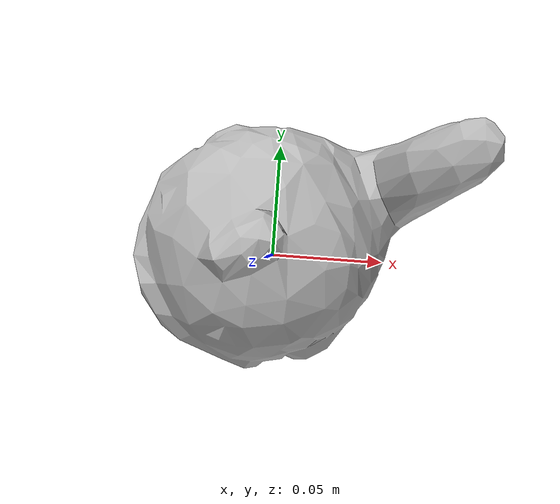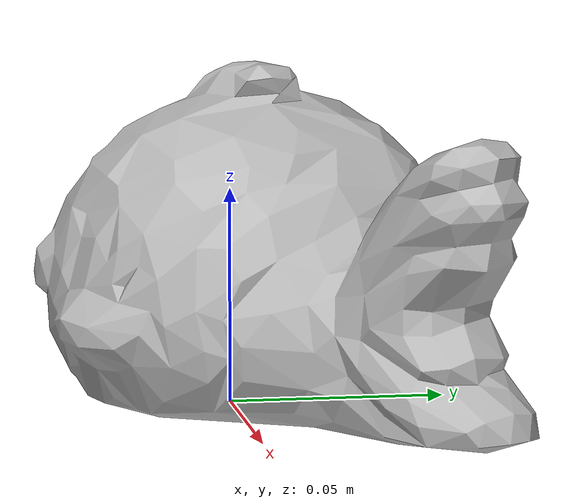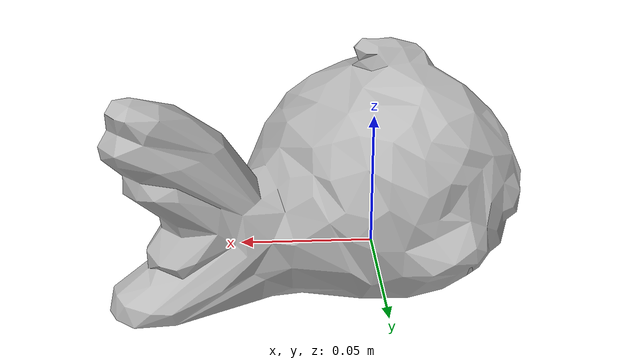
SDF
<?xml version="1.0" ?>
<sdf version="1.5">
  <model name="om">
    <static>true</static>
    <link name="link">
      <pose>-0.0 -0.0 0.031917 1.570796  0 -1.570796</pose>
      <collision name="collision">
        <geometry>
          <mesh>
            <uri>/home/well/graspit/models/objects/sim_model/22.stl</uri>
            <scale>0.001 0.001 0.001</scale>
          </mesh>
        </geometry>
      </collision>
      <visual name="visual">
        <geometry>
          <mesh>
            <uri>/home/well/graspit/models/objects/sim_model/22.stl</uri>
            <scale>0.001 0.001 0.001</scale>
          </mesh>
        </geometry>
      </visual>
    </link>
  </model>
</sdf>
